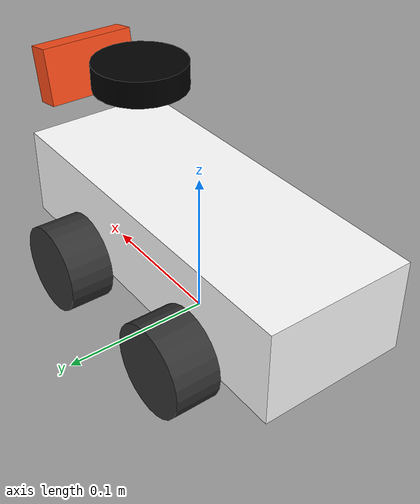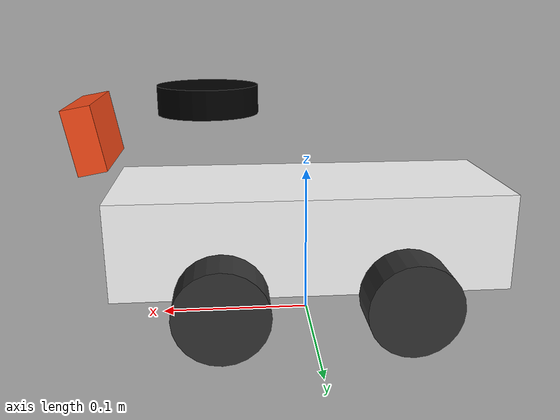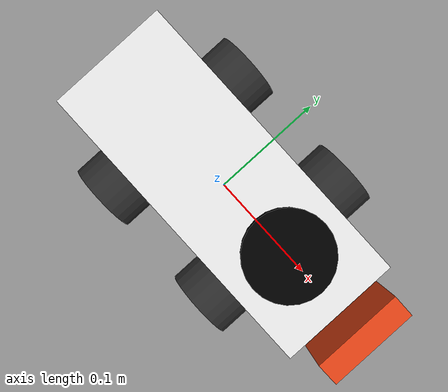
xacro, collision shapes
<?xml version="1.0"?>
<robot xmlns:xacro="http://www.ros.org/wiki/xacro" name="robo_cart">

    <xacro:arg name="use_gazebo" default="true" />
    <xacro:arg name="wheel_radius" default="0.03" />
    <xacro:arg name="wheel_width" default="0.03" />
    <xacro:arg name="wheel_mass" default="0.047" />
    <xacro:arg name="base_length" default="0.256" />
    <xacro:arg name="base_width" default="0.1" />
    <xacro:arg name="base_height" default="0.063" />
    <xacro:arg name="base_mass" default="1.366" />

    <xacro:include filename="$(find robo_cart_description)/urdf/properties.xacro" />

    <xacro:include filename="$(find robo_cart_description)/urdf/base.xacro" />
    <xacro:load_base use_gazebo="$(arg use_gazebo)" wheel_radius="$(arg wheel_radius)"
        wheel_width="$(arg wheel_width)" wheel_mass="$(arg wheel_mass)"
        base_length="$(arg base_length)" base_width="$(arg base_width)"
        base_height="$(arg base_height)" base_mass="$(arg base_mass)" />

    <xacro:include filename="$(find robo_cart_description)/urdf/lidar.xacro" />
    <xacro:load_lidar base_length="$(arg base_length)" base_height="$(arg base_height)"
        use_gazebo="$(arg use_gazebo)" />

    <xacro:include filename="$(find robo_cart_description)/urdf/camera.xacro" />
    <xacro:load_camera base_length="$(arg base_length)" base_height="$(arg base_height)"
        use_gazebo="$(arg use_gazebo)" />

    <xacro:include filename="$(find robo_cart_description)/urdf/velocity_control_plugin.xacro" />
    <xacro:load_velocity_control_plugin use_gazebo="$(arg use_gazebo)" />

    <xacro:include filename="$(find robo_cart_description)/urdf/gazebo_sim_ros2_control.xacro" />
    <xacro:load_gazebo_sim_ros2_control_plugin use_gazebo="$(arg use_gazebo)"
        base_length="$(arg base_length)" base_width="$(arg base_width)"
        wheel_radius="$(arg wheel_radius)" wheel_width="$(arg wheel_width)" />

    <xacro:include filename="$(find robo_cart_description)/urdf/robo_cart_ros2_control.xacro" />
    <xacro:load_robo_cart_ros2_control use_gazebo="$(arg use_gazebo)" />
</robot>

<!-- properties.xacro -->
<robot xmlns:xacro="http://www.ros.org/wiki/xacro">
    <xacro:property name="M_PI" value="3.1415926535897931" />

    <material name="white">
        <color rgba="1.0 1.0 1.0 1.0" />
    </material>

    <material name="orange">
        <color rgba="1.0 0.3 0.1 1.0" />
    </material>

    <material name="blue">
        <color rgba="0.2 0.2 1.0 1.0" />
    </material>

    <material name="black">
        <color rgba="0.0 0.0 0.0 1.0" />
    </material>

    <xacro:macro name="box_inertia" params="m x y z o_xyz o_rpy">
        <inertial>
            <origin xyz="${o_xyz}" rpy="${o_rpy}" />
            <mass value="${m}" />
            <inertia ixx="${(m/12) * (z*z + y*y)}" ixy="0.0" ixz="0.0" iyy="${(m/12) * (x*x + z*z)}"
                iyz="0.0" izz="${(m/12) * (x*x + y*y)}" />
        </inertial>
    </xacro:macro>

    <xacro:macro name="cylinder_inertia" params="m r l o_xyz o_rpy">
        <inertial>
            <origin xyz="${o_xyz}" rpy="${o_rpy}" />
            <mass value="${m}" />
            <inertia ixx="${(m/12) * (3*r*r + l*l)}" ixy="0.0" ixz="0.0"
                iyy="${(m/12) * (3*r*r + l*l)}" iyz="0.0" izz="${(m/2) * (r*r)}" />
        </inertial>
    </xacro:macro>

</robot>

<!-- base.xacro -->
<robot xmlns:xacro="http://www.ros.org/wiki/xacro">
    <xacro:macro name="load_base"
        params="use_gazebo wheel_radius wheel_width wheel_mass base_length base_width base_height base_mass">
        <xacro:arg name="prefix" default="base" />

        <link name="base_footprint_link" />

        <joint name="base_footprint_base_joint" type="fixed">
            <parent link="base_footprint_link" />
            <child link="base_link" />
            <origin xyz="0.0 0.0 ${wheel_radius}" />
        </joint>

        <link name="base_link">
            <visual>
                <geometry>
                    <mesh filename="file://$(find robo_cart_description)/meshes/robo_cart.stl"
                        scale="0.001 0.001 0.001" />
                </geometry>
                <origin xyz="0.0 -0.1875 0.015" rpy="0.0 0.0 ${-M_PI/2.0}" />
                <material name="white" />
            </visual>
            <collision>
                <geometry>
                    <box size="${base_length} ${base_width} ${base_height}" />
                </geometry>
                <origin xyz="0.0 0.0 ${base_height / 2.0}" rpy="0.0 0.0 0.0" />
            </collision>
            <xacro:box_inertia m="${base_mass}" x="${base_length}" y="${base_width}"
                z="${base_height}" o_xyz="0 0 ${base_height / 2.0}" o_rpy="0 0 0" />
        </link>

        <xacro:include filename="$(find robo_cart_description)/urdf/mecanum_wheel.xacro" />
        <xacro:load_wheel base_width="$(arg base_width)" base_length="$(arg base_length)"
            wheel_mass="$(arg wheel_mass)" wheel_width="$(arg wheel_width)"
            wheel_radius="$(arg wheel_radius)" use_gazebo="$(arg use_gazebo)" prefix="$(arg prefix)"
            side="front_right" x_reflect="1" y_reflect="-1" />

        <xacro:include filename="$(find robo_cart_description)/urdf/mecanum_wheel.xacro" />
        <xacro:load_wheel base_width="$(arg base_width)" base_length="$(arg base_length)"
            wheel_mass="$(arg wheel_mass)" wheel_width="$(arg wheel_width)"
            wheel_radius="$(arg wheel_radius)" use_gazebo="$(arg use_gazebo)" prefix="$(arg prefix)"
            side="front_left" x_reflect="1" y_reflect="1" />

        <xacro:include filename="$(find robo_cart_description)/urdf/mecanum_wheel.xacro" />
        <xacro:load_wheel base_width="$(arg base_width)" base_length="$(arg base_length)"
            wheel_mass="$(arg wheel_mass)" wheel_width="$(arg wheel_width)"
            wheel_radius="$(arg wheel_radius)" use_gazebo="$(arg use_gazebo)" prefix="$(arg prefix)"
            side="rear_right" x_reflect="-1" y_reflect="-1" />

        <xacro:include filename="$(find robo_cart_description)/urdf/mecanum_wheel.xacro" />
        <xacro:load_wheel base_width="$(arg base_width)" base_length="$(arg base_length)"
            wheel_mass="$(arg wheel_mass)" wheel_width="$(arg wheel_width)"
            wheel_radius="$(arg wheel_radius)" use_gazebo="$(arg use_gazebo)" prefix="$(arg prefix)"
            side="rear_left" x_reflect="-1" y_reflect="1" />

    </xacro:macro>
</robot>

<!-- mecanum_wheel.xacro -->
<robot xmlns:xacro="http://www.ros.org/wiki/xacro">
  <xacro:macro name="load_wheel"
    params="base_width base_length wheel_mass wheel_radius wheel_width use_gazebo prefix side x_reflect y_reflect">

    <link name="${side}_wheel_link">
      <visual>
        <origin xyz="0 0 0" rpy="${pi/2} 0 0" />
        <geometry>
          <mesh filename="file://$(find robo_cart_description)/meshes/${side}_wheel.STL"
            scale="0.9 0.9 0.9" />
        </geometry>
        <material name="dark_gray">
          <color rgba="0.2 0.2 0.2 1.0" />
        </material>
      </visual>
      <collision>
        <origin xyz="0 0 0" rpy="${pi/2} 0 0" />
        <geometry>
          <cylinder radius="${wheel_radius}" length="${wheel_width}" />
        </geometry>
      </collision>
      <inertial>
        <origin xyz="0 0 0" rpy="0 0 0" />
        <mass value="${wheel_mass}" />
        <inertia
          ixx="${(wheel_mass/12.0) * (3*wheel_radius*wheel_radius + wheel_width*wheel_width)}"
          ixy="0" ixz="0" iyy="${(wheel_mass/2.0) * (wheel_radius*wheel_radius)}" iyz="0"
          izz="${(wheel_mass/12.0) * (3*wheel_radius*wheel_radius + wheel_width*wheel_width)}" />
      </inertial>
    </link>

    <joint name="${prefix}_${side}_wheel_joint" type="continuous">
      <axis xyz="0 1 0" />
      <parent link="${prefix}_link" />
      <child link="${side}_wheel_link" />
      <origin
        xyz="${(x_reflect * base_length) / 4.0 - (x_reflect * 0.0055)} ${(y_reflect * (base_width + wheel_width)) / 2.0} 0.0"
        rpy="0 0 0" />
    </joint>

    <xacro:if value="${use_gazebo}">
      <gazebo reference="${prefix}_${side}_wheel_link">
        <surface>
          <friction>
            <ode>
              <mu>1.0</mu>
              <mu2>0.0</mu2>
            </ode>
          </friction>
        </surface>
        <visual>
          <material>
            <ambient>0.2 0.2 0.2 1.0</ambient>
            <diffuse>0.2 0.2 0.2 1.0</diffuse>
            <specular>0.2 0.2 0.2 1.0</specular>
            <emissive>0.0 0.0 0.0 0.0</emissive>
          </material>
        </visual>
      </gazebo>
    </xacro:if>

  </xacro:macro>
</robot>

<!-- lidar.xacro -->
<robot xmlns:xacro="http://www.ros.org/wiki/xacro">
    <xacro:macro name="load_lidar" params="base_length base_height use_gazebo">
        <joint name="base_laser_frame_joint" type="fixed">
            <parent link="base_link" />
            <child link="laser_frame" />
            <origin xyz="${base_length / 4.0} 0 ${base_height + 0.055}" rpy="0 0 0" />
        </joint>
        <link name="laser_frame">
            <visual>
                <origin xyz="0.0 -0.004 0.015" rpy="0.0 0.0 ${-M_PI}" />
                <geometry>
                    <mesh filename="file://$(find robo_cart_description)/meshes/X3_Lidar.stl"
                        scale="0.001 0.001 0.001" />
                </geometry>
                <material name="black" />
            </visual>
            <collision>
                <geometry>
                    <cylinder radius="0.032" length="0.018" />
                </geometry>
            </collision>
            <xacro:cylinder_inertia m="0.020" r="0.032" l="0.018" o_xyz="0 0 0.015" o_rpy="0 0 0" />
        </link>
        <xacro:if value="${use_gazebo}">
            <gazebo reference="laser_frame">
                <material>
                    <ambient>0.1 0.1 0.1 1</ambient>
                    <diffuse>0.1 0.1 0.1 1</diffuse>
                    <specular>0.1 0.1 0.1 1</specular>
                </material>
                <sensor name="laser" type="gpu_lidar">
                    <pose relative_to="laser_frame"> 0 0 0 0 0 0 </pose>
                    <gz_frame_id>laser_frame</gz_frame_id>
                    <topic>scan</topic>
                    <update_rate>10</update_rate>
                    <always_on>true</always_on>
                    <visualize>true</visualize>
                    <lidar>
                        <scan>
                            <horizontal>
                                <samples>360</samples>
                                <resolution>1</resolution>
                                <min_angle>-3.14159</min_angle>
                                <max_angle>3.14159</max_angle>
                            </horizontal>
                            <vertical>
                                <samples>1</samples>
                                <resolution>1</resolution>
                                <min_angle>0</min_angle>
                                <max_angle>0</max_angle>
                            </vertical>
                        </scan>
                        <range>
                            <min>0.20</min>
                            <max>30.0</max>
                            <resolution>0.013</resolution>
                        </range>
                    </lidar>
                </sensor>
            </gazebo>
        </xacro:if>
    </xacro:macro>
</robot>

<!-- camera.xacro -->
<robot xmlns:xacro="http://www.ros.org/wiki/xacro">
    <xacro:macro name="load_camera" params="base_length base_height use_gazebo">
        <joint name="base_camera_joint" type="fixed">
            <parent link="base_link" />
            <child link="camera_link" />
            <origin xyz="${base_length / 2.0 + 0.009} 0 ${base_height + 0.02 + 0.015}" rpy="0 0.18 0" />
        </joint>
        <link name="camera_link">
            <visual>
                <geometry>
                    <box size="0.018 0.0685 0.0405" />
                </geometry>
                <material name="orange" />
            </visual>
            <collision>
                <geometry>
                    <box size="0.018 0.0685 0.0405" />
                </geometry>
            </collision>
        </link>
        <joint name="camera_optical_joint" type="fixed">
            <parent link="camera_link" />
            <child link="camera_link_optical" />
            <origin xyz="0 0 0" rpy="${-M_PI/2} 0 ${-M_PI/2}" />
        </joint>
        <link name="camera_link_optical" />
        <xacro:if value="${use_gazebo}">
            <gazebo reference="camera_link">
                <material>
                    <ambient>0.1 0.1 0.1 1</ambient>
                    <diffuse>0.1 0.1 0.1 1</diffuse>
                    <specular>0.1 0.1 0.1 1</specular>
                </material>
                <sensor name="camera" type="camera">
                    <camera name="usb camera">
                        <camera_info_topic>/camera/camera_info</camera_info_topic>
                        <horizontal_fov>1.25663706</horizontal_fov>
                        <image>
                            <width>640</width>
                            <height>480</height>
                        </image>
                        <clip>
                            <near>0.05</near>
                            <far>1.5</far>
                        </clip>
                    </camera>
                    <always_on>true</always_on>
                    <gz_frame_id>camera_link_optical</gz_frame_id>
                    <topic>/camera/image_raw</topic>
                    <update_rate>2</update_rate>
                    <visualize>true</visualize>
                </sensor>
            </gazebo>
        </xacro:if>
    </xacro:macro>
</robot>
